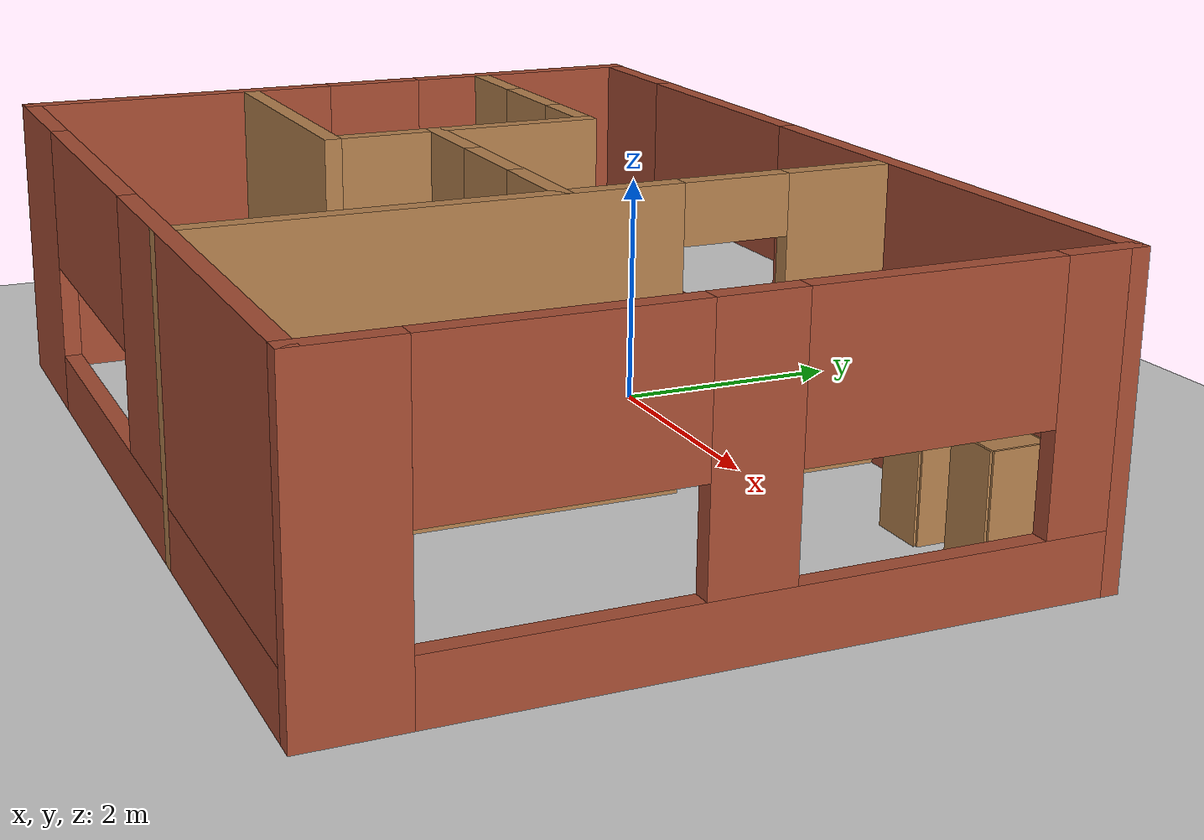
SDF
<sdf version="1.6">
 <world name="default">
  <light name="sun" type="directional">
   <pose>0 0 10 0 -0 0</pose>
   <diffuse>0.8 0.8 0.8 1</diffuse>
   <specular>0.2 0.2 0.2 1</specular>
   <attenuation>
    <range>1000</range>
    <constant>0.9</constant>
    <linear>0.01</linear>
    <quadratic>0.001</quadratic>
   </attenuation>
   <direction>-0.5 0.1 -0.9</direction>
  </light>
  <model name="ground_plane">
   <static>1</static>
   <link name="link">
    <collision name="collision">
     <geometry><plane><normal>0 0 1</normal><size>100 100</size></plane></geometry>
     <surface><friction><ode><mu>100</mu><mu2>50</mu2></ode></friction></surface>
    </collision>
    <visual name="visual">
     <cast_shadows>0</cast_shadows>
     <geometry><plane><normal>0 0 1</normal><size>100 100</size></plane></geometry>
     <material>
      <script><uri>file://media/materials/scripts/gazebo.material</uri><name>Gazebo/Grey</name></script>
     </material>
    </visual>
   </link>
  </model>
  <gravity>0 0 -9.8</gravity>
  <magnetic_field>6e-06 2.3e-05 -4.2e-05</magnetic_field>
  <atmosphere type="adiabatic"/>
  <physics name="default_physics" default="0" type="ode">
   <max_step_size>0.001</max_step_size>
   <real_time_factor>1</real_time_factor>
   <real_time_update_rate>1000</real_time_update_rate>
  </physics>
  <scene><ambient>0.4 0.4 0.4 1</ambient><background>0.7 0.7 0.7 1</background><shadows>1</shadows></scene>
  <spherical_coordinates>
   <surface_model>EARTH_WGS84</surface_model>
   <latitude_deg>0</latitude_deg>
   <longitude_deg>0</longitude_deg>
   <elevation>0</elevation>
   <heading_deg>0</heading_deg>
  </spherical_coordinates>
  <model name="mybuilding">
   <pose>1.07813 -1.74082 0 0 -0 0</pose>
   <link name="Wall_19">
    <pose>-3.99062 0.003845 0 0 0 -1.5708</pose>
    <visual name="Wall_19_Visual_0">
     <pose>-1.89462 0 1.25 0 -0 0</pose>
     <geometry><box><size>2.21077 0.15 2.5</size></box></geometry>
     <material>
      <script><uri>file://media/materials/scripts/gazebo.material</uri><name>Gazebo/Bricks</name></script>
      <ambient>1 1 1 1</ambient>
     </material>
     <meta><layer>0</layer></meta>
    </visual>
    <collision name="Wall_19_Collision_0">
     <geometry><box><size>2.21077 0.15 2.5</size></box></geometry>
     <pose>-1.89462 0 1.25 0 -0 0</pose>
    </collision>
    <visual name="Wall_19_Visual_1">
     <pose>1.55538 0 1.25 0 -0 0</pose>
     <geometry><box><size>2.88923 0.15 2.5</size></box></geometry>
     <material>
      <script><uri>file://media/materials/scripts/gazebo.material</uri><name>Gazebo/Bricks</name></script>
      <ambient>1 1 1 1</ambient>
     </material>
     <meta><layer>0</layer></meta>
    </visual>
    <collision name="Wall_19_Collision_1">
     <geometry><box><size>2.88923 0.15 2.5</size></box></geometry>
     <pose>1.55538 0 1.25 0 -0 0</pose>
    </collision>
    <visual name="Wall_19_Visual_2">
     <pose>-0.339233 0 2.25 0 -0 0</pose>
     <geometry><box><size>0.9 0.15 0.5</size></box></geometry>
     <material>
      <script><uri>file://media/materials/scripts/gazebo.material</uri><name>Gazebo/Bricks</name></script>
      <ambient>1 1 1 1</ambient>
     </material>
     <meta><layer>0</layer></meta>
    </visual>
    <collision name="Wall_19_Collision_2">
     <geometry><box><size>0.9 0.15 0.5</size></box></geometry>
     <pose>-0.339233 0 2.25 0 -0 0</pose>
    </collision>
   </link>
   <link name="Wall_20">
    <pose>0 -2.92865 0 0 0 -4.1e-05</pose>
    <visual name="Wall_20_Visual_0">
     <pose>-3.36267 0 1.25 0 -0 0</pose>
     <geometry><box><size>1.40589 0.15 2.5</size></box></geometry>
     <material>
      <script><uri>file://media/materials/scripts/gazebo.material</uri><name>Gazebo/Bricks</name></script>
      <ambient>1 1 1 1</ambient>
     </material>
     <meta><layer>0</layer></meta>
    </visual>
    <collision name="Wall_20_Collision_0">
     <geometry><box><size>1.40589 0.15 2.5</size></box></geometry>
     <pose>-3.36267 0 1.25 0 -0 0</pose>
    </collision>
    <visual name="Wall_20_Visual_1">
     <pose>0.702943 0 0.25 0 -0 0</pose>
     <geometry><box><size>6.72535 0.15 0.5</size></box></geometry>
     <material>
      <script><uri>file://media/materials/scripts/gazebo.material</uri><name>Gazebo/Bricks</name></script>
      <ambient>1 1 1 1</ambient>
     </material>
     <meta><layer>0</layer></meta>
    </visual>
    <collision name="Wall_20_Collision_1">
     <geometry><box><size>6.72535 0.15 0.5</size></box></geometry>
     <pose>0.702943 0 0.25 0 -0 0</pose>
    </collision>
    <visual name="Wall_20_Visual_2">
     <pose>2.02111 0 1.5 0 -0 0</pose>
     <geometry><box><size>4.08901 0.15 2</size></box></geometry>
     <material>
      <script><uri>file://media/materials/scripts/gazebo.material</uri><name>Gazebo/Bricks</name></script>
      <ambient>1 1 1 1</ambient>
     </material>
     <meta><layer>0</layer></meta>
    </visual>
    <collision name="Wall_20_Collision_2">
     <geometry><box><size>4.08901 0.15 2</size></box></geometry>
     <pose>2.02111 0 1.5 0 -0 0</pose>
    </collision>
    <visual name="Wall_20_Visual_3">
     <pose>-1.34156 0 1.9 0 -0 0</pose>
     <geometry><box><size>2.63633 0.15 1.2</size></box></geometry>
     <material>
      <script><uri>file://media/materials/scripts/gazebo.material</uri><name>Gazebo/Bricks</name></script>
      <ambient>1 1 1 1</ambient>
     </material>
     <meta><layer>0</layer></meta>
    </visual>
    <collision name="Wall_20_Collision_3">
     <geometry><box><size>2.63633 0.15 1.2</size></box></geometry>
     <pose>-1.34156 0 1.9 0 -0 0</pose>
    </collision>
   </link>
   <link name="Wall_21">
    <pose>3.99062 -0.003817 0 0 -0 1.5708</pose>
    <visual name="Wall_21_Visual_0">
     <pose>-2.6002 0 1.25 0 -0 0</pose>
     <geometry><box><size>0.799608 0.15 2.5</size></box></geometry>
     <material>
      <script><uri>file://media/materials/scripts/gazebo.material</uri><name>Gazebo/Bricks</name></script>
      <ambient>1 1 1 1</ambient>
     </material>
     <meta><layer>0</layer></meta>
    </visual>
    <collision name="Wall_21_Collision_0">
     <geometry><box><size>0.799608 0.15 2.5</size></box></geometry>
     <pose>-2.6002 0 1.25 0 -0 0</pose>
    </collision>
    <visual name="Wall_21_Visual_1">
     <pose>0.399804 0 0.25 0 -0 0</pose>
     <geometry><box><size>5.20039 0.15 0.5</size></box></geometry>
     <material>
      <script><uri>file://media/materials/scripts/gazebo.material</uri><name>Gazebo/Bricks</name></script>
      <ambient>1 1 1 1</ambient>
     </material>
     <meta><layer>0</layer></meta>
    </visual>
    <collision name="Wall_21_Collision_1">
     <geometry><box><size>5.20039 0.15 0.5</size></box></geometry>
     <pose>0.399804 0 0.25 0 -0 0</pose>
    </collision>
    <visual name="Wall_21_Visual_2">
     <pose>0.088365 0 1.5 0 -0 0</pose>
     <geometry><box><size>0.662846 0.15 2</size></box></geometry>
     <material>
      <script><uri>file://media/materials/scripts/gazebo.material</uri><name>Gazebo/Bricks</name></script>
      <ambient>1 1 1 1</ambient>
     </material>
     <meta><layer>0</layer></meta>
    </visual>
    <collision name="Wall_21_Collision_2">
     <geometry><box><size>0.662846 0.15 2</size></box></geometry>
     <pose>0.088365 0 1.5 0 -0 0</pose>
    </collision>
    <visual name="Wall_21_Visual_3">
     <pose>2.67558 0 1.5 0 -0 0</pose>
     <geometry><box><size>0.648848 0.15 2</size></box></geometry>
     <material>
      <script><uri>file://media/materials/scripts/gazebo.material</uri><name>Gazebo/Bricks</name></script>
      <ambient>1 1 1 1</ambient>
     </material>
     <meta><layer>0</layer></meta>
    </visual>
    <collision name="Wall_21_Collision_3">
     <geometry><box><size>0.648848 0.15 2</size></box></geometry>
     <pose>2.67558 0 1.5 0 -0 0</pose>
    </collision>
    <visual name="Wall_21_Visual_4">
     <pose>-1.22172 0 1.9 0 -0 0</pose>
     <geometry><box><size>1.95733 0.15 1.2</size></box></geometry>
     <material>
      <script><uri>file://media/materials/scripts/gazebo.material</uri><name>Gazebo/Bricks</name></script>
      <ambient>1 1 1 1</ambient>
     </material>
     <meta><layer>0</layer></meta>
    </visual>
    <collision name="Wall_21_Collision_4">
     <geometry><box><size>1.95733 0.15 1.2</size></box></geometry>
     <pose>-1.22172 0 1.9 0 -0 0</pose>
    </collision>
    <visual name="Wall_21_Visual_5">
     <pose>1.38547 0 1.9 0 -0 0</pose>
     <geometry><box><size>1.93136 0.15 1.2</size></box></geometry>
     <material>
      <script><uri>file://media/materials/scripts/gazebo.material</uri><name>Gazebo/Bricks</name></script>
      <ambient>1 1 1 1</ambient>
     </material>
     <meta><layer>0</layer></meta>
    </visual>
    <collision name="Wall_21_Collision_5">
     <geometry><box><size>1.93136 0.15 1.2</size></box></geometry>
     <pose>1.38547 0 1.9 0 -0 0</pose>
    </collision>
   </link>
   <link name="Wall_22">
    <pose>0.065617 2.92118 0 0 -0 3.14159</pose>
    <visual name="Wall_22_Visual_0">
     <pose>-1.71052 0 1.25 0 -0 0</pose>
     <geometry><box><size>4.57897 0.15 2.5</size></box></geometry>
     <material>
      <script><uri>file://media/materials/scripts/gazebo.material</uri><name>Gazebo/Bricks</name></script>
      <ambient>1 1 1 1</ambient>
     </material>
     <meta><layer>0</layer></meta>
    </visual>
    <collision name="Wall_22_Collision_0">
     <geometry><box><size>4.57897 0.15 2.5</size></box></geometry>
     <pose>-1.71052 0 1.25 0 -0 0</pose>
    </collision>
    <visual name="Wall_22_Visual_1">
     <pose>2.28948 0 0.25 0 -0 0</pose>
     <geometry><box><size>3.42103 0.15 0.5</size></box></geometry>
     <material>
      <script><uri>file://media/materials/scripts/gazebo.material</uri><name>Gazebo/Bricks</name></script>
      <ambient>1 1 1 1</ambient>
     </material>
     <meta><layer>0</layer></meta>
    </visual>
    <collision name="Wall_22_Collision_1">
     <geometry><box><size>3.42103 0.15 0.5</size></box></geometry>
     <pose>2.28948 0 0.25 0 -0 0</pose>
    </collision>
    <visual name="Wall_22_Visual_2">
     <pose>3.45499 0 1.5 0 -0 0</pose>
     <geometry><box><size>1.09002 0.15 2</size></box></geometry>
     <material>
      <script><uri>file://media/materials/scripts/gazebo.material</uri><name>Gazebo/Bricks</name></script>
      <ambient>1 1 1 1</ambient>
     </material>
     <meta><layer>0</layer></meta>
    </visual>
    <collision name="Wall_22_Collision_2">
     <geometry><box><size>1.09002 0.15 2</size></box></geometry>
     <pose>3.45499 0 1.5 0 -0 0</pose>
    </collision>
    <visual name="Wall_22_Visual_3">
     <pose>1.74448 0 1.9 0 -0 0</pose>
     <geometry><box><size>2.33101 0.15 1.2</size></box></geometry>
     <material>
      <script><uri>file://media/materials/scripts/gazebo.material</uri><name>Gazebo/Bricks</name></script>
      <ambient>1 1 1 1</ambient>
     </material>
     <meta><layer>0</layer></meta>
    </visual>
    <collision name="Wall_22_Collision_3">
     <geometry><box><size>2.33101 0.15 1.2</size></box></geometry>
     <pose>1.74448 0 1.9 0 -0 0</pose>
    </collision>
   </link>
   <link name="Wall_24">
    <pose>-2.67369 1.46337 0 0 -0 0</pose>
    <visual name="Wall_24_Visual_0">
     <pose>-0.842029 0 1.25 0 -0 0</pose>
     <geometry><box><size>0.815941 0.15 2.5</size></box></geometry>
     <material>
      <script><uri>file://media/materials/scripts/gazebo.material</uri><name>Gazebo/Wood</name></script>
      <ambient>1 1 1 1</ambient>
     </material>
     <meta><layer>0</layer></meta>
    </visual>
    <collision name="Wall_24_Collision_0">
     <geometry><box><size>0.815941 0.15 2.5</size></box></geometry>
     <pose>-0.842029 0 1.25 0 -0 0</pose>
    </collision>
    <visual name="Wall_24_Visual_1">
     <pose>0.857971 0 1.25 0 -0 0</pose>
     <geometry><box><size>0.784059 0.15 2.5</size></box></geometry>
     <material>
      <script><uri>file://media/materials/scripts/gazebo.material</uri><name>Gazebo/Wood</name></script>
      <ambient>1 1 1 1</ambient>
     </material>
     <meta><layer>0</layer></meta>
    </visual>
    <collision name="Wall_24_Collision_1">
     <geometry><box><size>0.784059 0.15 2.5</size></box></geometry>
     <pose>0.857971 0 1.25 0 -0 0</pose>
    </collision>
    <visual name="Wall_24_Visual_2">
     <pose>0.015941 0 2.25 0 -0 0</pose>
     <geometry><box><size>0.9 0.15 0.5</size></box></geometry>
     <material>
      <script><uri>file://media/materials/scripts/gazebo.material</uri><name>Gazebo/Wood</name></script>
      <ambient>1 1 1 1</ambient>
     </material>
     <meta><layer>0</layer></meta>
    </visual>
    <collision name="Wall_24_Collision_2">
     <geometry><box><size>0.9 0.15 0.5</size></box></geometry>
     <pose>0.015941 0 2.25 0 -0 0</pose>
    </collision>
   </link>
   <link name="Wall_25">
    <collision name="Wall_25_Collision">
     <geometry><box><size>2.5 0.15 2.5</size></box></geometry>
     <pose>0 0 1.25 0 -0 0</pose>
    </collision>
    <visual name="Wall_25_Visual">
     <pose>0 0 1.25 0 -0 0</pose>
     <geometry><box><size>2.5 0.15 2.5</size></box></geometry>
     <material>
      <script><uri>file://media/materials/scripts/gazebo.material</uri><name>Gazebo/Wood</name></script>
      <ambient>1 1 1 1</ambient>
     </material>
     <meta><layer>0</layer></meta>
    </visual>
    <pose>-1.49869 0.288366 0 0 0 -1.5708</pose>
   </link>
   <link name="Wall_26">
    <collision name="Wall_26_Collision">
     <geometry><box><size>2.5 0.15 2.5</size></box></geometry>
     <pose>0 0 1.25 0 -0 0</pose>
    </collision>
    <visual name="Wall_26_Visual">
     <pose>0 0 1.25 0 -0 0</pose>
     <geometry><box><size>2.5 0.15 2.5</size></box></geometry>
     <material>
      <script><uri>file://media/materials/scripts/gazebo.material</uri><name>Gazebo/Wood</name></script>
      <ambient>1 1 1 1</ambient>
     </material>
     <meta><layer>0</layer></meta>
    </visual>
    <pose>-2.67369 -0.886634 0 0 -0 3.14159</pose>
   </link>
   <link name="Wall_28">
    <pose>1.10707 -0.003845 0 0 -0 1.5708</pose>
    <visual name="Wall_28_Visual_0">
     <pose>-0.972181 0 1.25 0 -0 0</pose>
     <geometry><box><size>4.05564 0.15 2.5</size></box></geometry>
     <material>
      <script><uri>file://media/materials/scripts/gazebo.material</uri><name>Gazebo/Wood</name></script>
      <ambient>1 1 1 1</ambient>
     </material>
     <meta><layer>0</layer></meta>
    </visual>
    <collision name="Wall_28_Collision_0">
     <geometry><box><size>4.05564 0.15 2.5</size></box></geometry>
     <pose>-0.972181 0 1.25 0 -0 0</pose>
    </collision>
    <visual name="Wall_28_Visual_1">
     <pose>2.47782 0 1.25 0 -0 0</pose>
     <geometry><box><size>1.04436 0.15 2.5</size></box></geometry>
     <material>
      <script><uri>file://media/materials/scripts/gazebo.material</uri><name>Gazebo/Wood</name></script>
      <ambient>1 1 1 1</ambient>
     </material>
     <meta><layer>0</layer></meta>
    </visual>
    <collision name="Wall_28_Collision_1">
     <geometry><box><size>1.04436 0.15 2.5</size></box></geometry>
     <pose>2.47782 0 1.25 0 -0 0</pose>
    </collision>
    <visual name="Wall_28_Visual_2">
     <pose>1.50564 0 2.25 0 -0 0</pose>
     <geometry><box><size>0.9 0.15 0.5</size></box></geometry>
     <material>
      <script><uri>file://media/materials/scripts/gazebo.material</uri><name>Gazebo/Wood</name></script>
      <ambient>1 1 1 1</ambient>
     </material>
     <meta><layer>0</layer></meta>
    </visual>
    <collision name="Wall_28_Collision_2">
     <geometry><box><size>0.9 0.15 0.5</size></box></geometry>
     <pose>1.50564 0 2.25 0 -0 0</pose>
    </collision>
   </link>
   <link name="Wall_30">
    <pose>-0.202805 0.060974 0 0 -0 0</pose>
    <visual name="Wall_30_Visual_0">
     <pose>-0.916419 0 1.25 0 -0 0</pose>
     <geometry><box><size>0.917162 0.15 2.5</size></box></geometry>
     <material>
      <script><uri>file://media/materials/scripts/gazebo.material</uri><name>Gazebo/Wood</name></script>
      <ambient>1 1 1 1</ambient>
     </material>
     <meta><layer>0</layer></meta>
    </visual>
    <collision name="Wall_30_Collision_0">
     <geometry><box><size>0.917162 0.15 2.5</size></box></geometry>
     <pose>-0.916419 0 1.25 0 -0 0</pose>
    </collision>
    <visual name="Wall_30_Visual_1">
     <pose>0.908581 0 1.25 0 -0 0</pose>
     <geometry><box><size>0.932838 0.15 2.5</size></box></geometry>
     <material>
      <script><uri>file://media/materials/scripts/gazebo.material</uri><name>Gazebo/Wood</name></script>
      <ambient>1 1 1 1</ambient>
     </material>
     <meta><layer>0</layer></meta>
    </visual>
    <collision name="Wall_30_Collision_1">
     <geometry><box><size>0.932838 0.15 2.5</size></box></geometry>
     <pose>0.908581 0 1.25 0 -0 0</pose>
    </collision>
    <visual name="Wall_30_Visual_2">
     <pose>-0.007838 0 2.25 0 -0 0</pose>
     <geometry><box><size>0.9 0.15 0.5</size></box></geometry>
     <material>
      <script><uri>file://media/materials/scripts/gazebo.material</uri><name>Gazebo/Wood</name></script>
      <ambient>1 1 1 1</ambient>
     </material>
     <meta><layer>0</layer></meta>
    </visual>
    <collision name="Wall_30_Collision_2">
     <geometry><box><size>0.9 0.15 0.5</size></box></geometry>
     <pose>-0.007838 0 2.25 0 -0 0</pose>
    </collision>
   </link>
   <static>1</static>
  </model>
  <model name="beer">
   <link name="link">
    <pose>0 0 0.115 0 -0 0</pose>
    <inertial>
     <mass>0.39</mass>
     <inertia><ixx>0.00058</ixx><ixy>0</ixy><ixz>0</ixz><iyy>0.00058</iyy><iyz>0</iyz><izz>0.00019</izz></inertia>
    </inertial>
    <collision name="collision">
     <geometry><cylinder><radius>0.055</radius><length>0.23</length></cylinder></geometry>
    </collision>
    <visual name="visual">
     <geometry><cylinder><radius>0.055</radius><length>0.23</length></cylinder></geometry>
     <material>
      <script>
       <uri>model://beer/materials/scripts</uri>
       <uri>model://beer/materials/textures</uri>
       <name>Beer/Diffuse</name>
      </script>
     </material>
    </visual>
   </link>
   <pose>-1.94989 -3.28797 -3e-06 1e-06 0 -1.7e-05</pose>
  </model>
  <model name="bookshelf">
   <static>1</static>
   <link name="link">
    <inertial><mass>1</mass></inertial>
    <collision name="back">
     <pose>0 0.005 0.6 0 -0 0</pose>
     <geometry><box><size>0.9 0.01 1.2</size></box></geometry>
    </collision>
    <visual name="visual1">
     <pose>0 0.005 0.6 0 -0 0</pose>
     <geometry><box><size>0.9 0.01 1.2</size></box></geometry>
     <material>
      <script><uri>file://media/materials/scripts/gazebo.material</uri><name>Gazebo/Wood</name></script>
     </material>
    </visual>
    <collision name="left_side">
     <pose>0.45 -0.195 0.6 0 -0 0</pose>
     <geometry><box><size>0.02 0.4 1.2</size></box></geometry>
    </collision>
    <visual name="visual2">
     <pose>0.45 -0.195 0.6 0 -0 0</pose>
     <geometry><box><size>0.02 0.4 1.2</size></box></geometry>
     <material>
      <script><uri>file://media/materials/scripts/gazebo.material</uri><name>Gazebo/Wood</name></script>
     </material>
    </visual>
    <collision name="right_side">
     <pose>-0.45 -0.195 0.6 0 -0 0</pose>
     <geometry><box><size>0.02 0.4 1.2</size></box></geometry>
    </collision>
    <visual name="visual3">
     <pose>-0.45 -0.195 0.6 0 -0 0</pose>
     <geometry><box><size>0.02 0.4 1.2</size></box></geometry>
     <material>
      <script><uri>file://media/materials/scripts/gazebo.material</uri><name>Gazebo/Wood</name></script>
     </material>
    </visual>
    <collision name="bottom">
     <pose>0 -0.195 0.03 0 -0 0</pose>
     <geometry><box><size>0.88 0.4 0.06</size></box></geometry>
    </collision>
    <visual name="visual4">
     <pose>0 -0.195 0.03 0 -0 0</pose>
     <geometry><box><size>0.88 0.4 0.06</size></box></geometry>
     <material>
      <script><uri>file://media/materials/scripts/gazebo.material</uri><name>Gazebo/Wood</name></script>
     </material>
    </visual>
    <collision name="top">
     <pose>0 -0.195 1.19 0 -0 0</pose>
     <geometry><box><size>0.88 0.4 0.02</size></box></geometry>
    </collision>
    <visual name="visual5">
     <pose>0 -0.195 1.19 0 -0 0</pose>
     <geometry><box><size>0.88 0.4 0.02</size></box></geometry>
     <material>
      <script><uri>file://media/materials/scripts/gazebo.material</uri><name>Gazebo/Wood</name></script>
     </material>
    </visual>
    <collision name="low_shelf">
     <pose>0 -0.195 0.43 0 -0 0</pose>
     <geometry><box><size>0.88 0.4 0.02</size></box></geometry>
    </collision>
    <visual name="visual6">
     <pose>0 -0.195 0.43 0 -0 0</pose>
     <geometry><box><size>0.88 0.4 0.02</size></box></geometry>
     <material>
      <script><uri>file://media/materials/scripts/gazebo.material</uri><name>Gazebo/Wood</name></script>
     </material>
    </visual>
    <collision name="high_shelf">
     <pose>0 -0.195 0.8 0 -0 0</pose>
     <geometry><box><size>0.88 0.4 0.02</size></box></geometry>
    </collision>
    <visual name="visual7">
     <pose>0 -0.195 0.8 0 -0 0</pose>
     <geometry><box><size>0.88 0.4 0.02</size></box></geometry>
     <material>
      <script><uri>file://media/materials/scripts/gazebo.material</uri><name>Gazebo/Wood</name></script>
     </material>
    </visual>
   </link>
   <pose>3.27314 -4.32699 0 0 -0 0</pose>
  </model>
  <model name="table">
   <static>1</static>
   <link name="link">
    <collision name="surface">
     <pose>0 0 1 0 -0 0</pose>
     <geometry><box><size>1.5 0.8 0.03</size></box></geometry>
     <surface><friction><ode><mu>0.6</mu><mu2>0.6</mu2></ode></friction></surface>
    </collision>
    <visual name="visual1">
     <pose>0 0 1 0 -0 0</pose>
     <geometry><box><size>1.5 0.8 0.03</size></box></geometry>
     <material>
      <script><uri>file://media/materials/scripts/gazebo.material</uri><name>Gazebo/Wood</name></script>
     </material>
    </visual>
    <collision name="front_left_leg">
     <pose>0.68 0.38 0.5 0 -0 0</pose>
     <geometry><cylinder><radius>0.02</radius><length>1</length></cylinder></geometry>
    </collision>
    <visual name="front_left_leg">
     <pose>0.68 0.38 0.5 0 -0 0</pose>
     <geometry><cylinder><radius>0.02</radius><length>1</length></cylinder></geometry>
     <material>
      <script><uri>file://media/materials/scripts/gazebo.material</uri><name>Gazebo/Grey</name></script>
     </material>
    </visual>
    <collision name="front_right_leg">
     <pose>0.68 -0.38 0.5 0 -0 0</pose>
     <geometry><cylinder><radius>0.02</radius><length>1</length></cylinder></geometry>
    </collision>
    <visual name="front_right_leg">
     <pose>0.68 -0.38 0.5 0 -0 0</pose>
     <geometry><cylinder><radius>0.02</radius><length>1</length></cylinder></geometry>
     <material>
      <script><uri>file://media/materials/scripts/gazebo.material</uri><name>Gazebo/Grey</name></script>
     </material>
    </visual>
    <collision name="back_right_leg">
     <pose>-0.68 -0.38 0.5 0 -0 0</pose>
     <geometry><cylinder><radius>0.02</radius><length>1</length></cylinder></geometry>
    </collision>
    <visual name="back_right_leg">
     <pose>-0.68 -0.38 0.5 0 -0 0</pose>
     <geometry><cylinder><radius>0.02</radius><length>1</length></cylinder></geometry>
     <material>
      <script><uri>file://media/materials/scripts/gazebo.material</uri><name>Gazebo/Grey</name></script>
     </material>
    </visual>
    <collision name="back_left_leg">
     <pose>-0.68 0.38 0.5 0 -0 0</pose>
     <geometry><cylinder><radius>0.02</radius><length>1</length></cylinder></geometry>
    </collision>
    <visual name="back_left_leg">
     <pose>-0.68 0.38 0.5 0 -0 0</pose>
     <geometry><cylinder><radius>0.02</radius><length>1</length></cylinder></geometry>
     <material>
      <script><uri>file://media/materials/scripts/gazebo.material</uri><name>Gazebo/Grey</name></script>
     </material>
    </visual>
   </link>
   <pose>1.34917 -3.40552 0 0 -0 0</pose>
  </model>
  <model name="cabinet">
   <static>1</static>
   <link name="cabinet_bottom_plate">
    <inertial>
     <pose>0 0 -1 0 -0 0</pose>
     <inertia><ixx>2.05</ixx><ixy>0</ixy><ixz>0</ixz><iyy>2.05</iyy><iyz>0</iyz><izz>2.05</izz></inertia>
     <mass>25</mass>
    </inertial>
    <collision name="cabinet_bottom_plate_geom">
     <pose>0 0 0.01 0 -0 0</pose>
     <geometry><box><size>0.45 0.45 0.02</size></box></geometry>
    </collision>
    <visual name="cabinet_bottom_plate_geom_visual">
     <pose>0 0 0.01 0 -0 0</pose>
     <geometry><box><size>0.45 0.45 0.02</size></box></geometry>
     <material>
      <script><uri>file://media/materials/scripts/gazebo.material</uri><name>Gazebo/Wood</name></script>
     </material>
    </visual>
    <collision name="cabinet_bottom_plate_geom_cabinet_back_plate">
     <pose>0.235 0 0.51 0 -0 0</pose>
     <geometry><box><size>0.02 0.45 1.02</size></box></geometry>
    </collision>
    <visual name="cabinet_bottom_plate_geom_cabinet_back_plate_visual">
     <pose>0.235 0 0.51 0 -0 0</pose>
     <geometry><box><size>0.02 0.45 1.02</size></box></geometry>
     <material>
      <script><uri>file://media/materials/scripts/gazebo.material</uri><name>Gazebo/Wood</name></script>
     </material>
    </visual>
    <collision name="cabinet_bottom_plate_geom_cabinet_left_plate">
     <pose>0 0.235 0.51 0 -0 0</pose>
     <geometry><box><size>0.45 0.02 1.02</size></box></geometry>
    </collision>
    <visual name="cabinet_bottom_plate_geom_cabinet_left_plate_visual">
     <pose>0 0.235 0.51 0 -0 0</pose>
     <geometry><box><size>0.45 0.02 1.02</size></box></geometry>
     <material>
      <script><uri>file://media/materials/scripts/gazebo.material</uri><name>Gazebo/Wood</name></script>
     </material>
    </visual>
    <collision name="cabinet_bottom_plate_geom_cabinet_middle_plate">
     <pose>0 0 0.51 0 -0 0</pose>
     <geometry><box><size>0.45 0.45 0.02</size></box></geometry>
    </collision>
    <visual name="cabinet_bottom_plate_geom_cabinet_middle_plate_visual">
     <pose>0 0 0.51 0 -0 0</pose>
     <geometry><box><size>0.45 0.45 0.02</size></box></geometry>
     <material>
      <script><uri>file://media/materials/scripts/gazebo.material</uri><name>Gazebo/Wood</name></script>
     </material>
    </visual>
    <collision name="cabinet_bottom_plate_geom_cabinet_right_plate">
     <pose>0 -0.235 0.51 0 -0 0</pose>
     <geometry><box><size>0.45 0.02 1.02</size></box></geometry>
    </collision>
    <visual name="cabinet_bottom_plate_geom_cabinet_right_plate_visual">
     <pose>0 -0.235 0.51 0 -0 0</pose>
     <geometry><box><size>0.45 0.02 1.02</size></box></geometry>
     <material>
      <script><uri>file://media/materials/scripts/gazebo.material</uri><name>Gazebo/Wood</name></script>
     </material>
    </visual>
    <collision name="cabinet_bottom_plate_geom_cabinet_top_plate">
     <pose>0 0 1.01 0 -0 0</pose>
     <geometry><box><size>0.45 0.45 0.02</size></box></geometry>
    </collision>
    <visual name="cabinet_bottom_plate_geom_cabinet_top_plate_visual">
     <pose>0 0 1.01 0 -0 0</pose>
     <geometry><box><size>0.45 0.45 0.02</size></box></geometry>
     <material>
      <script><uri>file://media/materials/scripts/gazebo.material</uri><name>Gazebo/Wood</name></script>
     </material>
    </visual>
   </link>
   <pose>3.65992 0.6628 0 0 -0 0</pose>
  </model>
  <model name="cabinet_0">
   <static>1</static>
   <link name="cabinet_bottom_plate">
    <inertial>
     <pose>0 0 -1 0 -0 0</pose>
     <inertia><ixx>2.05</ixx><ixy>0</ixy><ixz>0</ixz><iyy>2.05</iyy><iyz>0</iyz><izz>2.05</izz></inertia>
     <mass>25</mass>
    </inertial>
    <collision name="cabinet_bottom_plate_geom">
     <pose>0 0 0.01 0 -0 0</pose>
     <geometry><box><size>0.45 0.45 0.02</size></box></geometry>
    </collision>
    <visual name="cabinet_bottom_plate_geom_visual">
     <pose>0 0 0.01 0 -0 0</pose>
     <geometry><box><size>0.45 0.45 0.02</size></box></geometry>
     <material>
      <script><uri>file://media/materials/scripts/gazebo.material</uri><name>Gazebo/Wood</name></script>
     </material>
    </visual>
    <collision name="cabinet_bottom_plate_geom_cabinet_back_plate">
     <pose>0.235 0 0.51 0 -0 0</pose>
     <geometry><box><size>0.02 0.45 1.02</size></box></geometry>
    </collision>
    <visual name="cabinet_bottom_plate_geom_cabinet_back_plate_visual">
     <pose>0.235 0 0.51 0 -0 0</pose>
     <geometry><box><size>0.02 0.45 1.02</size></box></geometry>
     <material>
      <script><uri>file://media/materials/scripts/gazebo.material</uri><name>Gazebo/Wood</name></script>
     </material>
    </visual>
    <collision name="cabinet_bottom_plate_geom_cabinet_left_plate">
     <pose>0 0.235 0.51 0 -0 0</pose>
     <geometry><box><size>0.45 0.02 1.02</size></box></geometry>
    </collision>
    <visual name="cabinet_bottom_plate_geom_cabinet_left_plate_visual">
     <pose>0 0.235 0.51 0 -0 0</pose>
     <geometry><box><size>0.45 0.02 1.02</size></box></geometry>
     <material>
      <script><uri>file://media/materials/scripts/gazebo.material</uri><name>Gazebo/Wood</name></script>
     </material>
    </visual>
    <collision name="cabinet_bottom_plate_geom_cabinet_middle_plate">
     <pose>0 0 0.51 0 -0 0</pose>
     <geometry><box><size>0.45 0.45 0.02</size></box></geometry>
    </collision>
    <visual name="cabinet_bottom_plate_geom_cabinet_middle_plate_visual">
     <pose>0 0 0.51 0 -0 0</pose>
     <geometry><box><size>0.45 0.45 0.02</size></box></geometry>
     <material>
      <script><uri>file://media/materials/scripts/gazebo.material</uri><name>Gazebo/Wood</name></script>
     </material>
    </visual>
    <collision name="cabinet_bottom_plate_geom_cabinet_right_plate">
     <pose>0 -0.235 0.51 0 -0 0</pose>
     <geometry><box><size>0.45 0.02 1.02</size></box></geometry>
    </collision>
    <visual name="cabinet_bottom_plate_geom_cabinet_right_plate_visual">
     <pose>0 -0.235 0.51 0 -0 0</pose>
     <geometry><box><size>0.45 0.02 1.02</size></box></geometry>
     <material>
      <script><uri>file://media/materials/scripts/gazebo.material</uri><name>Gazebo/Wood</name></script>
     </material>
    </visual>
    <collision name="cabinet_bottom_plate_geom_cabinet_top_plate">
     <pose>0 0 1.01 0 -0 0</pose>
     <geometry><box><size>0.45 0.45 0.02</size></box></geometry>
    </collision>
    <visual name="cabinet_bottom_plate_geom_cabinet_top_plate_visual">
     <pose>0 0 1.01 0 -0 0</pose>
     <geometry><box><size>0.45 0.45 0.02</size></box></geometry>
     <material>
      <script><uri>file://media/materials/scripts/gazebo.material</uri><name>Gazebo/Wood</name></script>
     </material>
    </visual>
   </link>
   <pose>4.46492 0.679523 0 0 -0 0</pose>
  </model>
  <model name="my_ball">
   <link name="link_0">
    <inertial>
     <mass>1</mass>
     <inertia><ixx>0.1</ixx><ixy>0</ixy><ixz>0</ixz><iyy>0.1</iyy><iyz>0</iyz><izz>0.1</izz></inertia>
    </inertial>
    <visual name="visual">
     <geometry><sphere><radius>0.1</radius></sphere></geometry>
     <material>
      <lighting>1</lighting>
      <script><uri>file://media/materials/scripts/gazebo.material</uri><name>Gazebo/Grey</name></script>
      <ambient>1 1 1 1</ambient>
      <diffuse>1 1 1 1</diffuse>
      <specular>1 1 1 1</specular>
      <emissive>1 1 1 1</emissive>
      <shader type="vertex"><normal_map>__default__</normal_map></shader>
     </material>
    </visual>
    <collision name="collision">
     <geometry><sphere><radius>0.1</radius></sphere></geometry>
     <surface>
      <friction>
       <ode><mu>1</mu><mu2>1</mu2><fdir1>0 0 0</fdir1><slip1>0</slip1><slip2>0</slip2></ode>
       <torsional>
        <coefficient>1</coefficient>
        <patch_radius>0</patch_radius>
        <surface_radius>0</surface_radius>
        <use_patch_radius>1</use_patch_radius>
        <ode><slip>0</slip></ode>
       </torsional>
      </friction>
      <bounce><restitution_coefficient>0</restitution_coefficient><threshold>1e+06</threshold></bounce>
      <contact>
       <collide_without_contact>0</collide_without_contact>
       <collide_without_contact_bitmask>1</collide_without_contact_bitmask>
       <collide_bitmask>1</collide_bitmask>
       <ode>
        <soft_cfm>0</soft_cfm>
        <soft_erp>0.2</soft_erp>
        <kp>1e+13</kp>
        <kd>1</kd>
        <max_vel>0.01</max_vel>
        <min_depth>0</min_depth>
       </ode>
       <bullet>
        <split_impulse>1</split_impulse>
        <split_impulse_penetration_threshold>-0.01</split_impulse_penetration_threshold>
        <soft_cfm>0</soft_cfm>
        <soft_erp>0.2</soft_erp>
        <kp>1e+13</kp>
        <kd>1</kd>
       </bullet>
      </contact>
     </surface>
    </collision>
   </link>
   <static>0</static>
   <pose>1.72106 0.135477 0.1 0 -0 0</pose>
  </model>
 </world>
</sdf>
